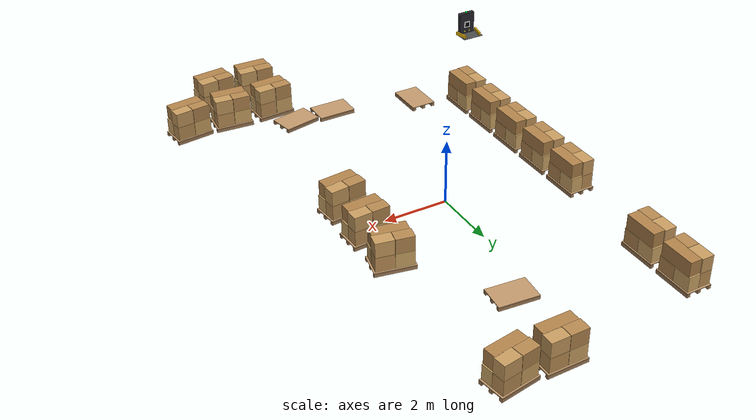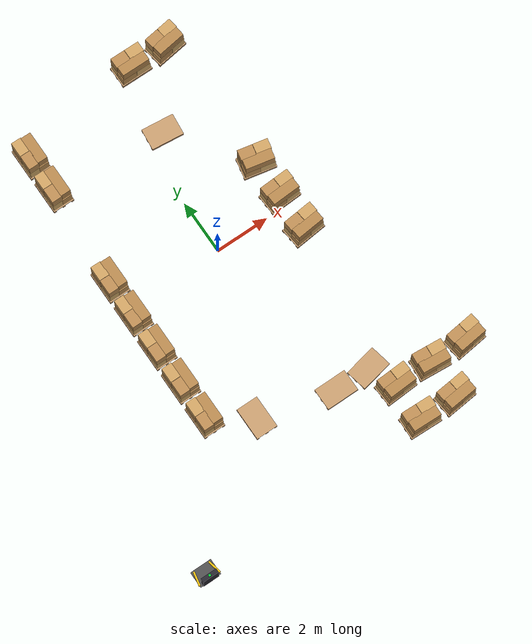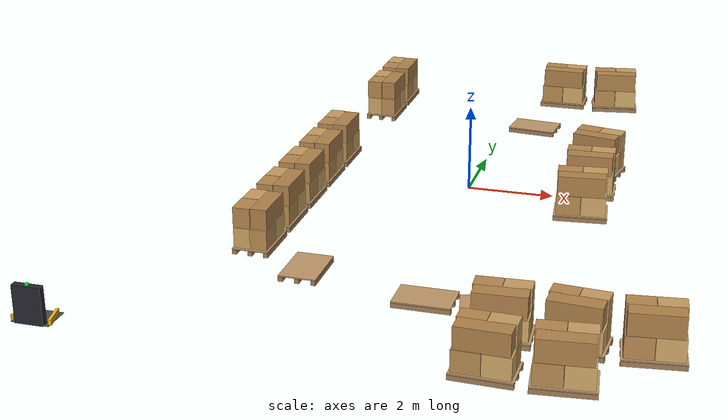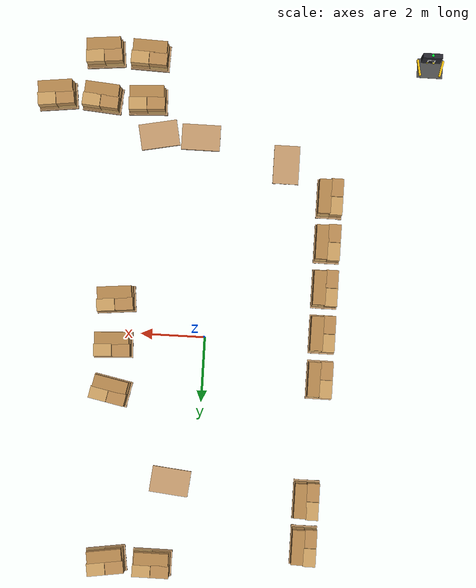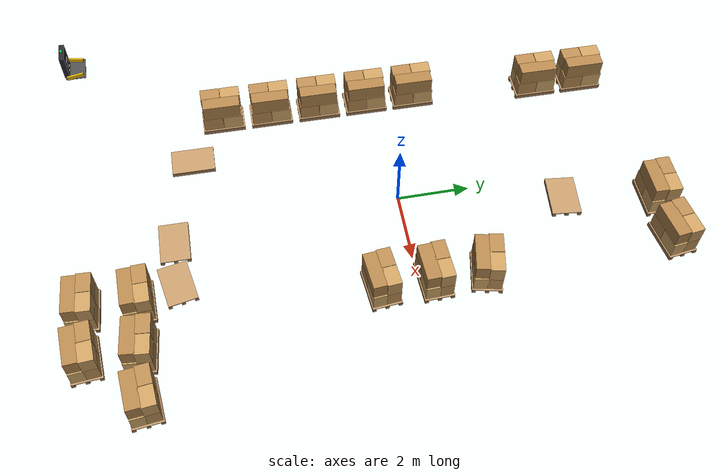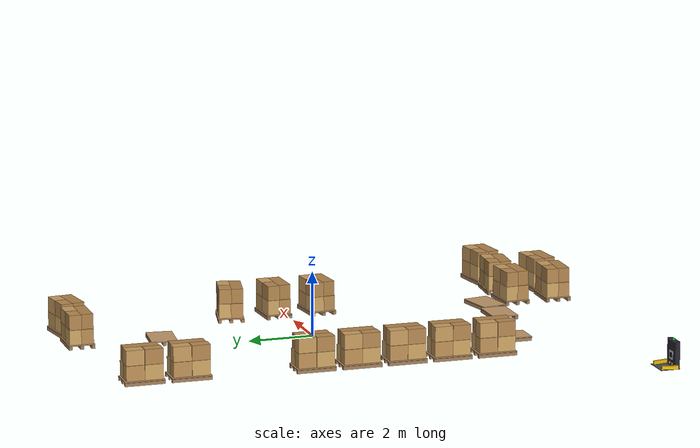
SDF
<sdf version="1.6">
 <world name="warehouse_pallets">
  <gravity>0 0 -9.8</gravity>
  <physics default="0" name="default_physics" type="ode">
   <max_step_size>0.004</max_step_size>
   <real_time_factor>1.0</real_time_factor>
   <real_time_update_rate>250</real_time_update_rate>
   <ode>
    <solver><type>quick</type><iters>20</iters><sor>1.3</sor></solver>
    <constraints>
     <cfm>0.00001</cfm>
     <erp>0.2</erp>
     <contact_max_correcting_vel>100.0</contact_max_correcting_vel>
     <contact_surface_layer>0.001</contact_surface_layer>
    </constraints>
   </ode>
  </physics>
  <plugin name="gazebo_ros_state" filename="libgazebo_ros_state.so">
   <ros><namespace>/</namespace></ros>
   <update_rate>10.0</update_rate>
  </plugin>
  <scene>
   <ambient>0.55 0.55 0.58 1</ambient>
   <background>0.25 0.28 0.32 1</background>
   <shadows>false</shadows>
  </scene>
  <light name="sun" type="directional">
   <cast_shadows>false</cast_shadows>
   <pose>0 0 12 0 0 0</pose>
   <diffuse>0.4 0.4 0.4 1</diffuse>
   <specular>0.1 0.1 0.1 1</specular>
   <direction>-0.25 0.15 -1</direction>
  </light>
  <include><name>pallet_stack_s1</name><uri>model://pallet_stack</uri><pose>2.2 -7.2 0 0 0 0.05</pose></include>
  <include>
   <name>pallet_stack_s2</name>
   <uri>model://pallet_stack</uri>
   <pose>3.6 -7.2 0 0 0 -0.08</pose>
  </include>
  <include><name>pallet_stack_s3</name><uri>model://pallet_stack</uri><pose>5.0 -7.2 0 0 0 0.12</pose></include>
  <include>
   <name>pallet_stack_s4</name>
   <uri>model://pallet_stack</uri>
   <pose>2.2 -8.6 0 0 0 -0.03</pose>
  </include>
  <include><name>pallet_stack_s5</name><uri>model://pallet_stack</uri><pose>3.6 -8.6 0 0 0 0.1</pose></include>
  <include>
   <name>pallet_stack_w1</name>
   <uri>model://pallet_stack</uri>
   <pose>-3.6 -4.5 0 0 0 1.57</pose>
  </include>
  <include>
   <name>pallet_stack_w2</name>
   <uri>model://pallet_stack</uri>
   <pose>-3.6 -3.1 0 0 0 1.57</pose>
  </include>
  <include>
   <name>pallet_stack_w3</name>
   <uri>model://pallet_stack</uri>
   <pose>-3.6 -1.7 0 0 0 1.57</pose>
  </include>
  <include>
   <name>pallet_stack_w4</name>
   <uri>model://pallet_stack</uri>
   <pose>-3.6 -0.3 0 0 0 1.57</pose>
  </include>
  <include><name>pallet_stack_w5</name><uri>model://pallet_stack</uri><pose>-3.6 1.1 0 0 0 1.57</pose></include>
  <include><name>pallet_stack_n1</name><uri>model://pallet_stack</uri><pose>1.2 7.0 0 0 0 0</pose></include>
  <include><name>pallet_stack_n2</name><uri>model://pallet_stack</uri><pose>2.6 7.0 0 0 0 0.15</pose></include>
  <include><name>pallet_stack_n3</name><uri>model://pallet_stack</uri><pose>-3.4 6.2 0 0 0 1.57</pose></include>
  <include><name>pallet_stack_n4</name><uri>model://pallet_stack</uri><pose>-3.4 4.8 0 0 0 1.57</pose></include>
  <include><name>pallet_stack_e1</name><uri>model://pallet_stack</uri><pose>2.8 1.8 0 0 0 -0.2</pose></include>
  <include><name>pallet_stack_e2</name><uri>model://pallet_stack</uri><pose>2.8 0.4 0 0 0 0.05</pose></include>
  <include><name>pallet_stack_e3</name><uri>model://pallet_stack</uri><pose>2.8 -1.0 0 0 0 0.1</pose></include>
  <include>
   <name>euro_pallet_empty_1</name>
   <uri>model://euro_pallet</uri>
   <pose>0.5 -6.2 0.01 0 0 0</pose>
  </include>
  <include>
   <name>euro_pallet_empty_2</name>
   <uri>model://euro_pallet</uri>
   <pose>1.8 -6.2 0.01 0 0 0.2</pose>
  </include>
  <include>
   <name>euro_pallet_empty_3</name>
   <uri>model://euro_pallet</uri>
   <pose>-2.2 -5.5 0.01 0 0 1.57</pose>
  </include>
  <include>
   <name>euro_pallet_empty_4</name>
   <uri>model://euro_pallet</uri>
   <pose>0.8 4.5 0.01 0 0 -0.1</pose>
  </include>
  <include>
   <name>amr_charging_dock</name>
   <uri>model://charging_dock</uri>
   <pose>-6.5 -9.0 0 0 0 1.5708</pose>
  </include>
 </world>
</sdf>

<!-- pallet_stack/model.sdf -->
<sdf version="1.6">
  <model name="pallet_stack">
    <!-- Static scenery stock: looks real, cheap for physics -->
    <static>true</static>
    <link name="link">

      <!-- Euro pallet deck -->
      <visual name="deck_vis">
        <pose>0 0 0.13 0 0 0</pose>
        <geometry><box><size>1.20 0.80 0.025</size></box></geometry>
        <material><ambient>0.76 0.60 0.42 1</ambient><diffuse>0.76 0.60 0.42 1</diffuse></material>
      </visual>
      <collision name="deck_col">
        <pose>0 0 0.13 0 0 0</pose>
        <geometry><box><size>1.20 0.80 0.025</size></box></geometry>
      </collision>

      <visual name="runner_l_vis">
        <pose>0 0.35 0.06 0 0 0</pose>
        <geometry><box><size>1.20 0.10 0.10</size></box></geometry>
        <material><ambient>0.65 0.50 0.35 1</ambient><diffuse>0.65 0.50 0.35 1</diffuse></material>
      </visual>
      <collision name="runner_l_col">
        <pose>0 0.35 0.06 0 0 0</pose>
        <geometry><box><size>1.20 0.10 0.10</size></box></geometry>
      </collision>
      <visual name="runner_m_vis">
        <pose>0 0 0.06 0 0 0</pose>
        <geometry><box><size>1.20 0.10 0.10</size></box></geometry>
        <material><ambient>0.65 0.50 0.35 1</ambient><diffuse>0.65 0.50 0.35 1</diffuse></material>
      </visual>
      <collision name="runner_m_col">
        <pose>0 0 0.06 0 0 0</pose>
        <geometry><box><size>1.20 0.10 0.10</size></box></geometry>
      </collision>
      <visual name="runner_r_vis">
        <pose>0 -0.35 0.06 0 0 0</pose>
        <geometry><box><size>1.20 0.10 0.10</size></box></geometry>
        <material><ambient>0.65 0.50 0.35 1</ambient><diffuse>0.65 0.50 0.35 1</diffuse></material>
      </visual>
      <collision name="runner_r_col">
        <pose>0 -0.35 0.06 0 0 0</pose>
        <geometry><box><size>1.20 0.10 0.10</size></box></geometry>
      </collision>

      <!-- Layer 1 cartons -->
      <visual name="box_a_vis">
        <pose>-0.28 0.18 0.38 0 0 0</pose>
        <geometry><box><size>0.55 0.38 0.45</size></box></geometry>
        <material><ambient>0.78 0.62 0.38 1</ambient><diffuse>0.82 0.66 0.40 1</diffuse></material>
      </visual>
      <collision name="box_a_col">
        <pose>-0.28 0.18 0.38 0 0 0</pose>
        <geometry><box><size>0.55 0.38 0.45</size></box></geometry>
      </collision>
      <visual name="box_b_vis">
        <pose>0.28 0.18 0.38 0 0 0</pose>
        <geometry><box><size>0.55 0.38 0.45</size></box></geometry>
        <material><ambient>0.72 0.55 0.32 1</ambient><diffuse>0.76 0.58 0.35 1</diffuse></material>
      </visual>
      <collision name="box_b_col">
        <pose>0.28 0.18 0.38 0 0 0</pose>
        <geometry><box><size>0.55 0.38 0.45</size></box></geometry>
      </collision>
      <visual name="box_c_vis">
        <pose>-0.28 -0.18 0.38 0 0 0</pose>
        <geometry><box><size>0.55 0.38 0.45</size></box></geometry>
        <material><ambient>0.70 0.52 0.30 1</ambient><diffuse>0.74 0.56 0.33 1</diffuse></material>
      </visual>
      <collision name="box_c_col">
        <pose>-0.28 -0.18 0.38 0 0 0</pose>
        <geometry><box><size>0.55 0.38 0.45</size></box></geometry>
      </collision>
      <visual name="box_d_vis">
        <pose>0.28 -0.18 0.38 0 0 0</pose>
        <geometry><box><size>0.55 0.38 0.45</size></box></geometry>
        <material><ambient>0.80 0.64 0.40 1</ambient><diffuse>0.84 0.68 0.42 1</diffuse></material>
      </visual>
      <collision name="box_d_col">
        <pose>0.28 -0.18 0.38 0 0 0</pose>
        <geometry><box><size>0.55 0.38 0.45</size></box></geometry>
      </collision>

      <!-- Layer 2 cartons -->
      <visual name="box_e_vis">
        <pose>-0.28 0.18 0.84 0 0 0</pose>
        <geometry><box><size>0.55 0.38 0.45</size></box></geometry>
        <material><ambient>0.68 0.50 0.28 1</ambient><diffuse>0.72 0.54 0.32 1</diffuse></material>
      </visual>
      <collision name="box_e_col">
        <pose>-0.28 0.18 0.84 0 0 0</pose>
        <geometry><box><size>0.55 0.38 0.45</size></box></geometry>
      </collision>
      <visual name="box_f_vis">
        <pose>0.28 0.18 0.84 0 0 0</pose>
        <geometry><box><size>0.55 0.38 0.45</size></box></geometry>
        <material><ambient>0.75 0.58 0.35 1</ambient><diffuse>0.79 0.62 0.38 1</diffuse></material>
      </visual>
      <collision name="box_f_col">
        <pose>0.28 0.18 0.84 0 0 0</pose>
        <geometry><box><size>0.55 0.38 0.45</size></box></geometry>
      </collision>
      <visual name="box_g_vis">
        <pose>0.0 -0.18 0.84 0 0 0</pose>
        <geometry><box><size>1.05 0.38 0.45</size></box></geometry>
        <material><ambient>0.66 0.48 0.26 1</ambient><diffuse>0.70 0.52 0.30 1</diffuse></material>
      </visual>
      <collision name="box_g_col">
        <pose>0.0 -0.18 0.84 0 0 0</pose>
        <geometry><box><size>1.05 0.38 0.45</size></box></geometry>
      </collision>
    </link>
  </model>
</sdf>

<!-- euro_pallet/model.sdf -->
<sdf version="1.6">
  <model name="euro_pallet">
    <static>false</static>
    <link name="pallet_link">
      <inertial>
        <pose>0 0 0.07 0 0 0</pose>
        <mass>12.0</mass>
        <inertia>
          <ixx>0.8</ixx><ixy>0</ixy><ixz>0</ixz>
          <iyy>1.6</iyy><iyz>0</iyz>
          <izz>2.2</izz>
        </inertia>
      </inertial>

      <!-- Top Deck Slats -->
      <visual name="top_deck_vis">
        <pose>0 0 0.13 0 0 0</pose>
        <geometry><box><size>1.20 0.80 0.025</size></box></geometry>
        <material><ambient>0.76 0.60 0.42 1</ambient><diffuse>0.76 0.60 0.42 1</diffuse></material>
      </visual>
      <collision name="top_deck_col">
        <pose>0 0 0.13 0 0 0</pose>
        <geometry><box><size>1.20 0.80 0.025</size></box></geometry>
      </collision>

      <!-- 3 Longitudinal Runner Blocks -->
      <visual name="runner_left_vis">
        <pose>0 0.35 0.06 0 0 0</pose>
        <geometry><box><size>1.20 0.10 0.10</size></box></geometry>
        <material><ambient>0.65 0.50 0.35 1</ambient><diffuse>0.65 0.50 0.35 1</diffuse></material>
      </visual>
      <collision name="runner_left_col">
        <pose>0 0.35 0.06 0 0 0</pose>
        <geometry><box><size>1.20 0.10 0.10</size></box></geometry>
      </collision>

      <visual name="runner_mid_vis">
        <pose>0 0 0.06 0 0 0</pose>
        <geometry><box><size>1.20 0.10 0.10</size></box></geometry>
        <material><ambient>0.65 0.50 0.35 1</ambient><diffuse>0.65 0.50 0.35 1</diffuse></material>
      </visual>
      <collision name="runner_mid_col">
        <pose>0 0 0.06 0 0 0</pose>
        <geometry><box><size>1.20 0.10 0.10</size></box></geometry>
      </collision>

      <visual name="runner_right_vis">
        <pose>0 -0.35 0.06 0 0 0</pose>
        <geometry><box><size>1.20 0.10 0.10</size></box></geometry>
        <material><ambient>0.65 0.50 0.35 1</ambient><diffuse>0.65 0.50 0.35 1</diffuse></material>
      </visual>
      <collision name="runner_right_col">
        <pose>0 -0.35 0.06 0 0 0</pose>
        <geometry><box><size>1.20 0.10 0.10</size></box></geometry>
      </collision>
    </link>
  </model>
</sdf>

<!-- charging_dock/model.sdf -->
<sdf version="1.6">
  <model name="charging_dock">
    <static>true</static>
    <link name="dock_link">
      <!-- Base Floor Plate -->
      <visual name="base_plate_vis">
        <pose>0.2 0 0.005 0 0 0</pose>
        <geometry>
          <box><size>0.6 0.8 0.01</size></box>
        </geometry>
        <material>
          <ambient>0.2 0.2 0.2 1</ambient>
          <diffuse>0.3 0.3 0.3 1</diffuse>
        </material>
      </visual>

      <!-- Main Back Wall Column -->
      <visual name="column_vis">
        <pose>-0.05 0 0.4 0 0 0</pose>
        <geometry>
          <box><size>0.15 0.6 0.8</size></box>
        </geometry>
        <material>
          <ambient>0.1 0.1 0.12 1</ambient>
          <diffuse>0.15 0.15 0.18 1</diffuse>
        </material>
      </visual>
      <collision name="column_col">
        <pose>-0.05 0 0.4 0 0 0</pose>
        <geometry>
          <box><size>0.15 0.6 0.8</size></box>
        </geometry>
      </collision>

      <!-- Left Wheel Guide Funnel (Angled) -->
      <visual name="left_funnel_vis">
        <pose>0.2 0.35 0.06 0 0 -0.2</pose>
        <geometry>
          <box><size>0.5 0.06 0.12</size></box>
        </geometry>
        <material>
          <ambient>0.9 0.7 0.0 1</ambient>
          <diffuse>0.95 0.75 0.05 1</diffuse>
        </material>
      </visual>
      <collision name="left_funnel_col">
        <pose>0.2 0.35 0.06 0 0 -0.2</pose>
        <geometry>
          <box><size>0.5 0.06 0.12</size></box>
        </geometry>
      </collision>

      <!-- Right Wheel Guide Funnel (Angled) -->
      <visual name="right_funnel_vis">
        <pose>0.2 -0.35 0.06 0 0 0.2</pose>
        <geometry>
          <box><size>0.5 0.06 0.12</size></box>
        </geometry>
        <material>
          <ambient>0.9 0.7 0.0 1</ambient>
          <diffuse>0.95 0.75 0.05 1</diffuse>
        </material>
      </visual>
      <collision name="right_funnel_col">
        <pose>0.2 -0.35 0.06 0 0 0.2</pose>
        <geometry>
          <box><size>0.5 0.06 0.12</size></box>
        </geometry>
      </collision>

      <!-- Charging Terminals (Spring contacts) -->
      <visual name="charge_terminal_left_vis">
        <pose>0.03 0.10 0.10 0 0 0</pose>
        <geometry>
          <box><size>0.04 0.06 0.05</size></box>
        </geometry>
        <material>
          <ambient>0.9 0.8 0.1 1</ambient>
          <diffuse>0.95 0.85 0.2 1</diffuse>
        </material>
      </visual>
      <visual name="charge_terminal_right_vis">
        <pose>0.03 -0.10 0.10 0 0 0</pose>
        <geometry>
          <box><size>0.04 0.06 0.05</size></box>
        </geometry>
        <material>
          <ambient>0.9 0.8 0.1 1</ambient>
          <diffuse>0.95 0.85 0.2 1</diffuse>
        </material>
      </visual>

      <!-- Visual Fiducial / Marker Target Panel for Camera Recognition -->
      <visual name="fiducial_panel_vis">
        <pose>0.03 0 0.35 0 0 0</pose>
        <geometry>
          <box><size>0.01 0.25 0.25</size></box>
        </geometry>
        <material>
          <ambient>1 1 1 1</ambient>
          <diffuse>1 1 1 1</diffuse>
        </material>
      </visual>
      <!-- Visual Fiducial Black Center Square (ArUco / Tag pattern) -->
      <visual name="fiducial_marker_vis">
        <pose>0.036 0 0.35 0 0 0</pose>
        <geometry>
          <box><size>0.005 0.16 0.16</size></box>
        </geometry>
        <material>
          <ambient>0 0 0 1</ambient>
          <diffuse>0 0 0 1</diffuse>
        </material>
      </visual>

      <!-- Status Indicator Light (Green / Blue Glow) -->
      <visual name="status_light_vis">
        <pose>-0.05 0 0.82 0 0 0</pose>
        <geometry>
          <cylinder><radius>0.04</radius><length>0.05</length></cylinder>
        </geometry>
        <material>
          <ambient>0 1 0.2 1</ambient>
          <diffuse>0 1 0.2 1</diffuse>
          <emissive>0 0.8 0.2 1</emissive>
        </material>
      </visual>
    </link>
  </model>
</sdf>
